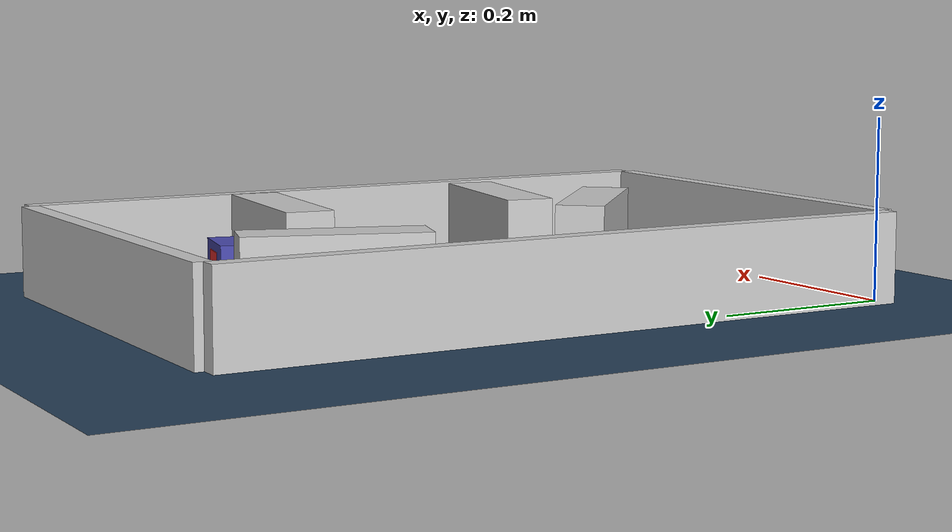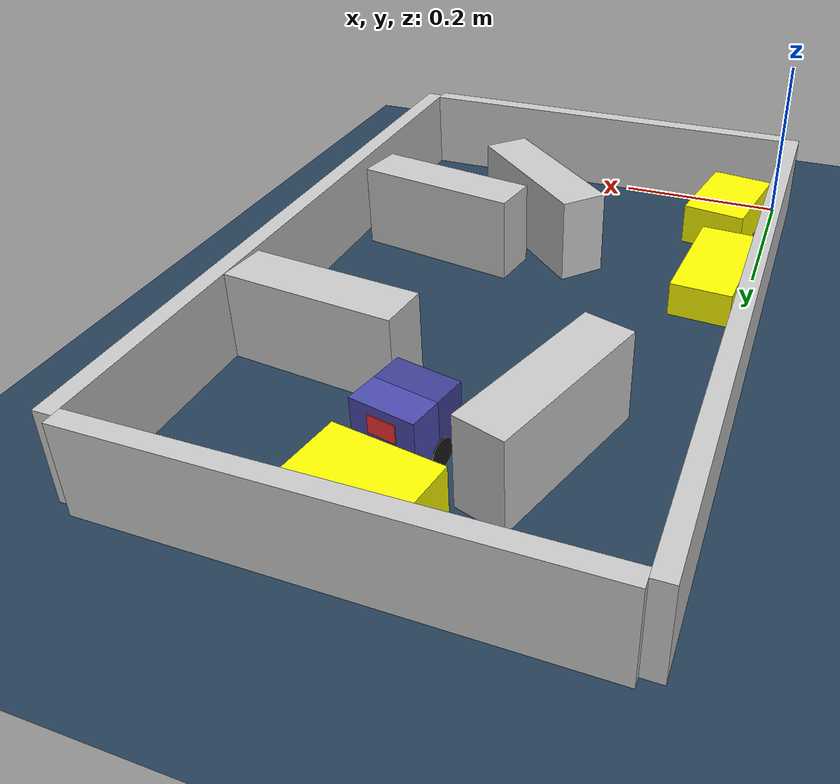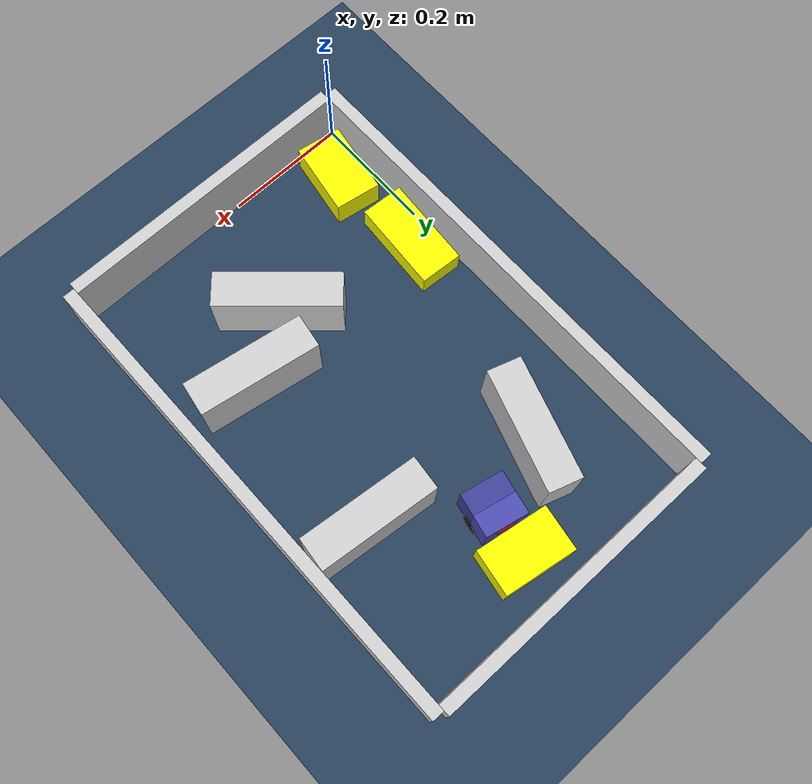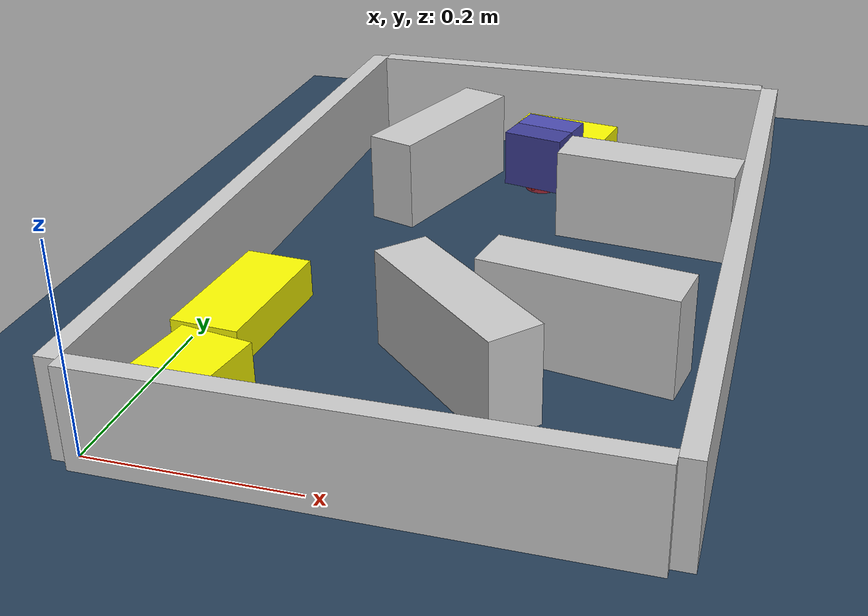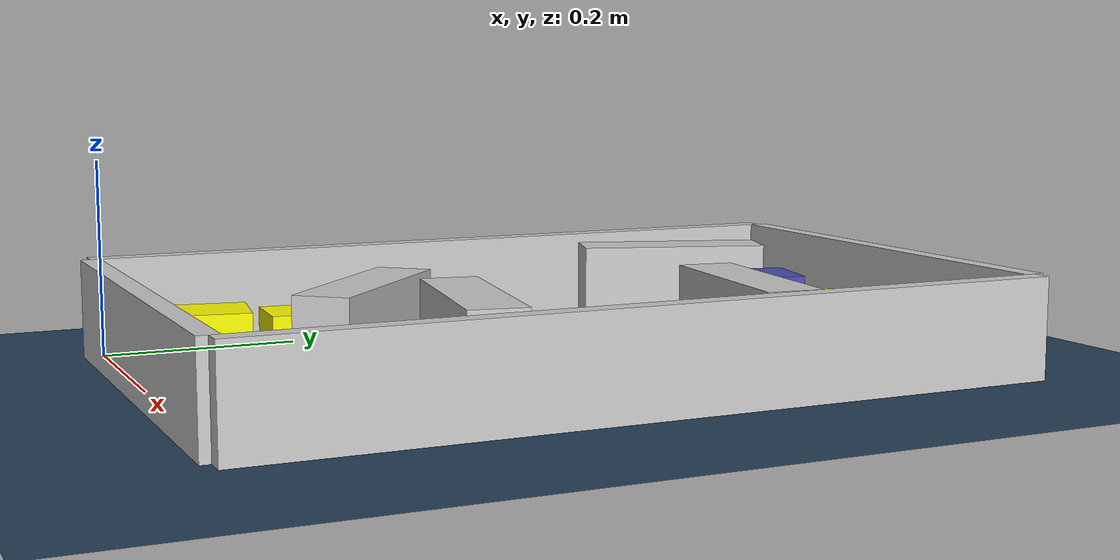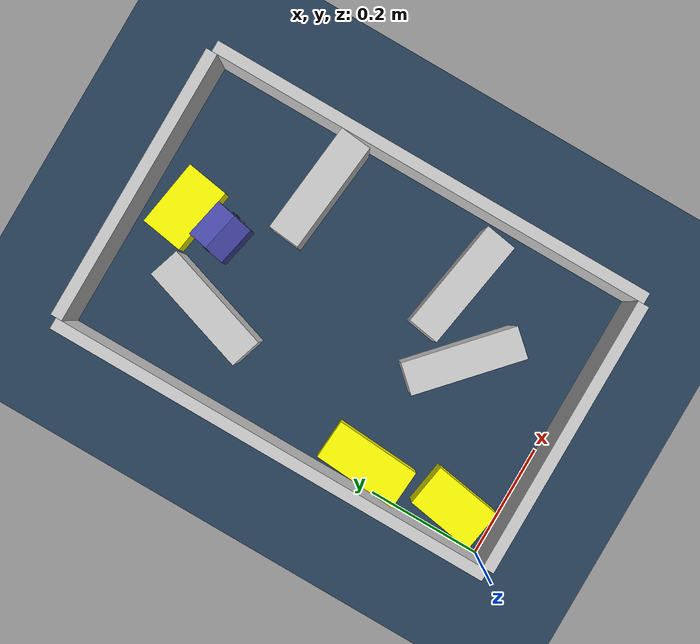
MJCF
<?xml version='1.0' encoding='utf-8'?>
<mujoco model="real_buildable">
  <compiler angle="degree" />
  <option timestep="0.002" integrator="implicitfast" iterations="100" cone="elliptic" />
  <default>
    <geom density="1" />
  </default>
  <asset>
    <texture builtin="gradient" height="3072" rgb1="0.3 0.5 0.7" rgb2="0 0 0" type="skybox" width="512" />
    <texture builtin="checker" height="300" mark="edge" markrgb="0.8 0.8 0.8" name="groundplane" rgb1="0.2 0.3 0.4" rgb2="0.1 0.2 0.3" type="2d" width="300" />
    <material name="groundplane" reflectance="0.2" texrepeat="5 5" texture="groundplane" texuniform="true" />
  </asset>
  <worldbody>
    <light dir="0 0 -1" directional="true" pos="0 0 1.5" />
    <geom name="floor" type="plane" condim="4" friction="0.5 0.005 0.001" material="groundplane" size="0 0 0.05" />
    <body name="walls">
      <geom name="wall_boundary_left" type="box" condim="4" friction="1.0 0.005 0.0001" rgba="0.8 0.8 0.8 1" pos="-0.010000 0.387500 0.050000" euler="0 0 0.000000" size="0.010000 0.397500 0.050000" />
      <geom name="wall_boundary_right" type="box" condim="4" friction="1.0 0.005 0.0001" rgba="0.8 0.8 0.8 1" pos="0.500000 0.387500 0.050000" euler="0 0 0.000000" size="0.010000 0.397500 0.050000" />
      <geom name="wall_boundary_bottom" type="box" condim="4" friction="1.0 0.005 0.0001" rgba="0.8 0.8 0.8 1" pos="0.245000 -0.010000 0.050000" euler="0 0 0.000000" size="0.245000 0.010000 0.050000" />
      <geom name="wall_boundary_top" type="box" condim="4" friction="1.0 0.005 0.0001" rgba="0.8 0.8 0.8 1" pos="0.245000 0.785000 0.050000" euler="0 0 0.000000" size="0.245000 0.010000 0.050000" />
      <geom name="wall_inner_1" type="box" condim="4" friction="1.0 0.005 0.0001" rgba="0.8 0.8 0.8 1" pos="0.268367 0.190140 0.050000" euler="0 0 -42.186027" size="0.097500 0.027500 0.050000" />
      <geom name="wall_inner_2" type="box" condim="4" friction="1.0 0.005 0.0001" rgba="0.8 0.8 0.8 1" pos="0.371868 0.254587 0.050000" euler="0 0 -9.385357" size="0.097500 0.027500 0.050000" />
      <geom name="wall_inner_3" type="box" condim="4" friction="1.0 0.005 0.0001" rgba="0.8 0.8 0.8 1" pos="0.390000 0.528000 0.050000" euler="0 0 174.000000" size="0.097500 0.027500 0.050000" />
      <geom name="wall_inner_4" type="box" condim="4" friction="1.0 0.005 0.0001" rgba="0.8 0.8 0.8 1" pos="0.132000 0.589000 0.050000" euler="0 0 72.200000" size="0.097500 0.027500 0.050000" />
    </body>
    <body name="car" pos="0.24902848739617384 0.63193414877540288 0.01" quat="0.7769273905550903 0 0 0.62959020783781106">
      <freejoint name="car_freejoint" />
      <inertial pos="0 0 0.0375" mass="0.35" diaginertia="0.000266 0.000266 0.000286" />
      <geom name="front_chassis_collision" type="box" pos="0.0175 0 0.0375" size="0.0175 0.035 0.0325" rgba="0.3 0.3 0.7 1" />
      <geom name="rear_chassis_collision" type="box" pos="-0.0175 0 0.0375" size="0.0175 0.035 0.0325" rgba="0.25 0.25 0.6 1" />
      <geom name="front_marker" type="box" pos="0.034 0 0.0505" size="0.002 0.015 0.01" rgba="1 0.2 0.2 1" contype="0" conaffinity="0" />
      <body name="rear_support_body" pos="-0.03 0 0.0025">
        <joint name="rear_caster_joint" type="ball" damping="0.0001" />
        <inertial pos="0 0 0" mass="0.025" diaginertia="0.000001 0.000001 0.000001" />
        <geom name="rear_support" type="sphere" pos="0 0 0" size="0.0025" friction="0 0 0" rgba="0.7 0.1 0.1 1" />
      </body>
      <body name="front_support_body" pos="0.03 0 0.0025">
        <joint name="front_caster_joint" type="ball" damping="0.0001" />
        <inertial pos="0 0 0" mass="0.025" diaginertia="0.000001 0.000001 0.000001" />
        <geom name="front_support" type="sphere" pos="0 0 0" size="0.0025" friction="0 0 0" rgba="0.1 0.7 0.1 1" />
      </body>
      <body name="left_wheel" pos="0 0.0375 0.015">
        <inertial pos="0 0 0" mass="0.05" diaginertia="0.000003 0.000006 0.000003" />
        <joint name="left_wheel_joint" type="hinge" axis="0 1 0" damping="0.01" armature="0.0001" />
        <geom name="left_wheel_collision" type="cylinder" size="0.015 0.0005" euler="90 0 0" rgba="0.1 0.1 0.1 1" />
      </body>
      <body name="right_wheel" pos="0 -0.0375 0.015">
        <inertial pos="0 0 0" mass="0.05" diaginertia="0.000003 0.000006 0.000003" />
        <joint name="right_wheel_joint" type="hinge" axis="0 1 0" damping="0.01" armature="0.0001" />
        <geom name="right_wheel_collision" type="cylinder" size="0.015 0.0005" euler="90 0 0" rgba="0.1 0.1 0.1 1" />
      </body>
    </body>
    <body name="obstacle_0_movable">
      <geom name="obstacle_0_movable" condim="4" pos="0.040169565023787518 0.2357199395537459 0.02" friction="1 0.005 0.0001" rgba="1 1 0 1" size="0.035000 0.075000 0.020000" type="box" mass="0.1" quat="0.03504505522599953 0 0 0.99938573339036951" />
      <joint type="free" />
    </body>
    <body name="obstacle_1_movable">
      <geom name="obstacle_1_movable" condim="4" pos="0.25498747872011879 0.70713551559106214 0.025000000000000001" friction="1 0.005 0.0001" rgba="1 1 0 1" size="0.037500 0.060000 0.025000" type="box" mass="0.1" quat="0.76160555158030263 0 0 0.64804088127375337" />
      <joint type="free" />
    </body>
    <body name="obstacle_2_movable">
      <geom name="obstacle_2_movable" condim="4" pos="0.052142999999999974 0.076808999999999905 0.025000000000000001" friction="1 0.005 0.0001" rgba="1 1 0 1" size="0.037500 0.060000 0.025000" type="box" mass="0.1" quat="0.081653172891671039 0 0 0.99666080456528583" />
      <joint type="free" />
    </body>
    <site name="goal" type="sphere" pos="0.245000 0.640000 0.0" size="0.02" rgba="1 0 0 0.5" />
  </worldbody>
  <actuator>
    <velocity name="left_wheel_drive" joint="left_wheel_joint" ctrlrange="-25 25" kv="0.75" forcerange="-0.5 0.5" />
    <velocity name="right_wheel_drive" joint="right_wheel_joint" ctrlrange="-25 25" kv="0.75" forcerange="-0.5 0.5" />
  </actuator>
</mujoco>
